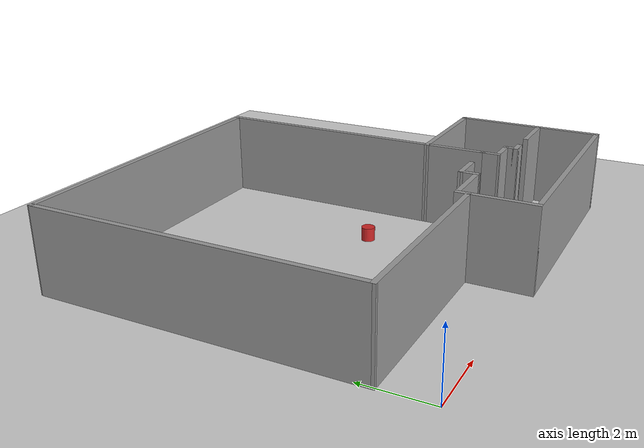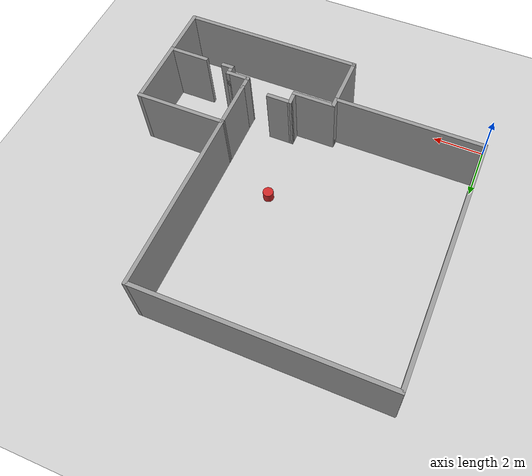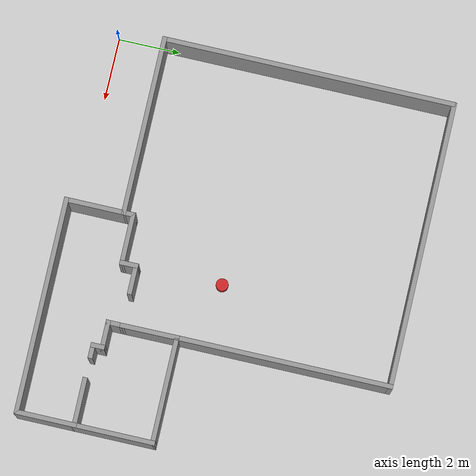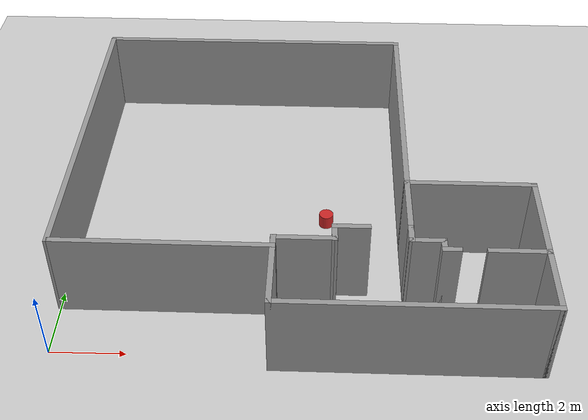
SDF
<sdf version="1.7">
 <world name="default">
  <light name="sun" type="directional">
   <pose>0 0 10 0 -0 0</pose>
   <diffuse>0.8 0.8 0.8 1</diffuse>
   <specular>0.2 0.2 0.2 1</specular>
   <attenuation>
    <range>1000</range>
    <constant>0.9</constant>
    <linear>0.01</linear>
    <quadratic>0.001</quadratic>
   </attenuation>
   <direction>-0.5 0.1 -0.9</direction>
   <spot><inner_angle>0</inner_angle><outer_angle>0</outer_angle><falloff>0</falloff></spot>
  </light>
  <model name="ground_plane">
   <static>1</static>
   <link name="link">
    <collision name="collision">
     <geometry><plane><normal>0 0 1</normal><size>100 100</size></plane></geometry>
     <surface>
      <contact><collide_bitmask>65535</collide_bitmask></contact>
      <friction><ode><mu>100</mu><mu2>50</mu2></ode></friction>
     </surface>
    </collision>
    <visual name="visual">
     <cast_shadows>0</cast_shadows>
     <geometry><plane><normal>0 0 1</normal><size>100 100</size></plane></geometry>
     <material>
      <script><uri>file://media/materials/scripts/gazebo.material</uri><name>Gazebo/Grey</name></script>
     </material>
    </visual>
   </link>
  </model>
  <gravity>0 0 -9.8</gravity>
  <magnetic_field>6e-06 2.3e-05 -4.2e-05</magnetic_field>
  <atmosphere type="adiabatic"/>
  <physics type="ode">
   <max_step_size>0.001</max_step_size>
   <real_time_factor>1</real_time_factor>
   <real_time_update_rate>1000</real_time_update_rate>
  </physics>
  <scene><ambient>0.4 0.4 0.4 1</ambient><background>0.7 0.7 0.7 1</background><shadows>1</shadows></scene>
  <spherical_coordinates>
   <surface_model>EARTH_WGS84</surface_model>
   <latitude_deg>0</latitude_deg>
   <longitude_deg>0</longitude_deg>
   <elevation>0</elevation>
   <heading_deg>0</heading_deg>
  </spherical_coordinates>
  <model name="myworld">
   <pose>6.25639 5.28948 0 0 -0 0</pose>
   <link name="Wall_10">
    <collision name="Wall_10_Collision">
     <geometry><box><size>9.46 0.15 2.5</size></box></geometry>
     <pose>0 0 1.25 0 -0 0</pose>
    </collision>
    <visual name="Wall_10_Visual">
     <pose>0 0 1.25 0 -0 0</pose>
     <geometry><box><size>9.46 0.15 2.5</size></box></geometry>
     <material>
      <script><uri>file://media/materials/scripts/gazebo.material</uri><name>Gazebo/Grey</name></script>
      <ambient>1 1 1 1</ambient>
     </material>
     <meta><layer>0</layer></meta>
    </visual>
    <pose>-6.24496 0.906376 0 0 -0 1.5708</pose>
   </link>
   <link name="Wall_109">
    <collision name="Wall_109_Collision">
     <geometry><box><size>3.52779 0.15 2.5</size></box></geometry>
     <pose>0 0 1.25 0 -0 0</pose>
    </collision>
    <visual name="Wall_109_Visual">
     <pose>0 0 1.25 0 -0 0</pose>
     <geometry><box><size>3.52779 0.15 2.5</size></box></geometry>
     <material>
      <script><uri>file://media/materials/scripts/gazebo.material</uri><name>Gazebo/Grey</name></script>
      <ambient>1 1 1 1</ambient>
     </material>
     <meta><layer>0</layer></meta>
    </visual>
    <pose>4.55614 -1.245 0 0 -0 3.14159</pose>
   </link>
   <link name="Wall_111">
    <collision name="Wall_111_Collision">
     <geometry><box><size>1.90524 0.15 2.5</size></box></geometry>
     <pose>0 0 1.25 0 -0 0</pose>
    </collision>
    <visual name="Wall_111_Visual">
     <pose>0 0 1.25 0 -0 0</pose>
     <geometry><box><size>1.90524 0.15 2.5</size></box></geometry>
     <material>
      <script><uri>file://media/materials/scripts/gazebo.material</uri><name>Gazebo/Grey</name></script>
      <ambient>1 1 1 1</ambient>
     </material>
     <meta><layer>0</layer></meta>
    </visual>
    <pose>2.87215 -2.12261 0 0 -0 -1.56522</pose>
   </link>
   <link name="Wall_114">
    <collision name="Wall_114_Collision">
     <geometry><box><size>7 0.15 2.5</size></box></geometry>
     <pose>0 0 1.25 0 -0 0</pose>
    </collision>
    <visual name="Wall_114_Visual">
     <pose>0 0 1.25 0 -0 0</pose>
     <geometry><box><size>7 0.15 2.5</size></box></geometry>
     <material>
      <script><uri>file://media/materials/scripts/gazebo.material</uri><name>Gazebo/Grey</name></script>
      <ambient>1 1 1 1</ambient>
     </material>
     <meta><layer>0</layer></meta>
    </visual>
    <pose>2.86725 2.18 0 0 -0 1.5708</pose>
   </link>
   <link name="Wall_116">
    <collision name="Wall_116_Collision">
     <geometry><box><size>9.25 0.15 2.5</size></box></geometry>
     <pose>0 0 1.25 0 -0 0</pose>
    </collision>
    <visual name="Wall_116_Visual">
     <pose>0 0 1.25 0 -0 0</pose>
     <geometry><box><size>9.25 0.15 2.5</size></box></geometry>
     <material>
      <script><uri>file://media/materials/scripts/gazebo.material</uri><name>Gazebo/Grey</name></script>
      <ambient>1 1 1 1</ambient>
     </material>
     <meta><layer>0</layer></meta>
    </visual>
    <pose>-1.68275 5.605 0 0 -0 3.14159</pose>
   </link>
   <link name="Wall_119">
    <collision name="Wall_119_Collision">
     <geometry><box><size>2 0.15 2.5</size></box></geometry>
     <pose>0 0 1.25 0 -0 0</pose>
    </collision>
    <visual name="Wall_119_Visual">
     <pose>0 0 1.25 0 -0 0</pose>
     <geometry><box><size>2 0.15 2.5</size></box></geometry>
     <material>
      <script><uri>file://media/materials/scripts/gazebo.material</uri><name>Gazebo/Grey</name></script>
      <ambient>1 1 1 1</ambient>
     </material>
     <meta><layer>0</layer></meta>
    </visual>
    <pose>-0.594959 -4.68 0 0 -0 -1.5708</pose>
   </link>
   <link name="Wall_127">
    <collision name="Wall_127_Collision">
     <geometry><box><size>1 0.15 2.5</size></box></geometry>
     <pose>0 0 1.25 0 -0 0</pose>
    </collision>
    <visual name="Wall_127_Visual">
     <pose>0 0 1.25 0 -0 0</pose>
     <geometry><box><size>1 0.15 2.5</size></box></geometry>
     <material>
      <script><uri>file://media/materials/scripts/gazebo.material</uri><name>Gazebo/Grey</name></script>
      <ambient>1 1 1 1</ambient>
     </material>
     <meta><layer>0</layer></meta>
    </visual>
    <pose>1.37526 -3.005 0 0 -0 0</pose>
   </link>
   <link name="Wall_133">
    <collision name="Wall_133_Collision">
     <geometry><box><size>0.95 0.15 2.5</size></box></geometry>
     <pose>0 0 1.25 0 -0 0</pose>
    </collision>
    <visual name="Wall_133_Visual">
     <pose>0 0 1.25 0 -0 0</pose>
     <geometry><box><size>0.95 0.15 2.5</size></box></geometry>
     <material>
      <script><uri>file://media/materials/scripts/gazebo.material</uri><name>Gazebo/Grey</name></script>
      <ambient>1 1 1 1</ambient>
     </material>
     <meta><layer>0</layer></meta>
    </visual>
    <pose>3.27723 -3.45021 0 0 -0 0</pose>
   </link>
   <link name="Wall_135">
    <collision name="Wall_135_Collision">
     <geometry><box><size>0.45 0.15 2.5</size></box></geometry>
     <pose>0 0 1.25 0 -0 0</pose>
    </collision>
    <visual name="Wall_135_Visual">
     <pose>0 0 1.25 0 -0 0</pose>
     <geometry><box><size>0.45 0.15 2.5</size></box></geometry>
     <material>
      <script><uri>file://media/materials/scripts/gazebo.material</uri><name>Gazebo/Grey</name></script>
      <ambient>1 1 1 1</ambient>
     </material>
     <meta><layer>0</layer></meta>
    </visual>
    <pose>3.67723 -3.60021 0 0 -0 -1.5708</pose>
   </link>
   <link name="Wall_138">
    <collision name="Wall_138_Collision">
     <geometry><box><size>0.5 0.15 2.5</size></box></geometry>
     <pose>0 0 1.25 0 -0 0</pose>
    </collision>
    <visual name="Wall_138_Visual">
     <pose>0 0 1.25 0 -0 0</pose>
     <geometry><box><size>0.5 0.15 2.5</size></box></geometry>
     <material>
      <script><uri>file://media/materials/scripts/gazebo.material</uri><name>Gazebo/Grey</name></script>
      <ambient>1 1 1 1</ambient>
     </material>
     <meta><layer>0</layer></meta>
    </visual>
    <pose>3.85223 -3.75021 0 0 -0 0</pose>
   </link>
   <link name="Wall_14">
    <collision name="Wall_14_Collision">
     <geometry><box><size>5.8 0.15 2.5</size></box></geometry>
     <pose>0 0 1.25 0 -0 0</pose>
    </collision>
    <visual name="Wall_14_Visual">
     <pose>0 0 1.25 0 -0 0</pose>
     <geometry><box><size>5.8 0.15 2.5</size></box></geometry>
     <material>
      <script><uri>file://media/materials/scripts/gazebo.material</uri><name>Gazebo/Grey</name></script>
      <ambient>1 1 1 1</ambient>
     </material>
     <meta><layer>0</layer></meta>
    </visual>
    <pose>-3.41996 -3.75181 0 0 -0 -0.001128</pose>
   </link>
   <link name="Wall_144">
    <collision name="Wall_144_Collision">
     <geometry><box><size>6.99 0.15 2.5</size></box></geometry>
     <pose>0 0 1.25 0 -0 0</pose>
    </collision>
    <visual name="Wall_144_Visual">
     <pose>0 0 1.25 0 -0 0</pose>
     <geometry><box><size>6.99 0.15 2.5</size></box></geometry>
     <material>
      <script><uri>file://media/materials/scripts/gazebo.material</uri><name>Gazebo/Grey</name></script>
      <ambient>1 1 1 1</ambient>
     </material>
     <meta><layer>0</layer></meta>
    </visual>
    <pose>2.82504 -5.605 0 0 -0 0</pose>
   </link>
   <link name="Wall_146">
    <collision name="Wall_146_Collision">
     <geometry><box><size>2 0.15 2.5</size></box></geometry>
     <pose>0 0 1.25 0 -0 0</pose>
    </collision>
    <visual name="Wall_146_Visual">
     <pose>0 0 1.25 0 -0 0</pose>
     <geometry><box><size>2 0.15 2.5</size></box></geometry>
     <material>
      <script><uri>file://media/materials/scripts/gazebo.material</uri><name>Gazebo/Grey</name></script>
      <ambient>1 1 1 1</ambient>
     </material>
     <meta><layer>0</layer></meta>
    </visual>
    <pose>6.24504 -4.68 0 0 -0 1.5708</pose>
   </link>
   <link name="Wall_148">
    <collision name="Wall_148_Collision">
     <geometry><box><size>2.66 0.15 2.5</size></box></geometry>
     <pose>0 0 1.25 0 -0 0</pose>
    </collision>
    <visual name="Wall_148_Visual">
     <pose>0 0 1.25 0 -0 0</pose>
     <geometry><box><size>2.66 0.15 2.5</size></box></geometry>
     <material>
      <script><uri>file://media/materials/scripts/gazebo.material</uri><name>Gazebo/Grey</name></script>
      <ambient>1 1 1 1</ambient>
     </material>
     <meta><layer>0</layer></meta>
    </visual>
    <pose>6.24504 -2.5 0 0 -0 1.5708</pose>
   </link>
   <link name="Wall_150">
    <collision name="Wall_150_Collision">
     <geometry><box><size>1.6 0.15 2.5</size></box></geometry>
     <pose>0 0 1.25 0 -0 0</pose>
    </collision>
    <visual name="Wall_150_Visual">
     <pose>0 0 1.25 0 -0 0</pose>
     <geometry><box><size>1.6 0.15 2.5</size></box></geometry>
     <material>
      <script><uri>file://media/materials/scripts/gazebo.material</uri><name>Gazebo/Grey</name></script>
      <ambient>1 1 1 1</ambient>
     </material>
     <meta><layer>0</layer></meta>
    </visual>
    <pose>5.52004 -3.755 0 0 -0 3.14159</pose>
   </link>
   <link name="Wall_54">
    <collision name="Wall_54_Collision">
     <geometry><box><size>0.45 0.15 2.5</size></box></geometry>
     <pose>0 0 1.25 0 -0 0</pose>
    </collision>
    <visual name="Wall_54_Visual">
     <pose>0 0 1.25 0 -0 0</pose>
     <geometry><box><size>0.45 0.15 2.5</size></box></geometry>
     <material>
      <script><uri>file://media/materials/scripts/gazebo.material</uri><name>Gazebo/Grey</name></script>
      <ambient>1 1 1 1</ambient>
     </material>
     <meta><layer>0</layer></meta>
    </visual>
    <pose>-0.594959 -3.605 0 0 -0 1.5708</pose>
   </link>
   <link name="Wall_85">
    <collision name="Wall_85_Collision">
     <geometry><box><size>1.7 0.15 2.5</size></box></geometry>
     <pose>0 0 1.25 0 -0 0</pose>
    </collision>
    <visual name="Wall_85_Visual">
     <pose>0 0 1.25 0 -0 0</pose>
     <geometry><box><size>1.7 0.15 2.5</size></box></geometry>
     <material>
      <script><uri>file://media/materials/scripts/gazebo.material</uri><name>Gazebo/Grey</name></script>
      <ambient>1 1 1 1</ambient>
     </material>
     <meta><layer>0</layer></meta>
    </visual>
    <pose>0.180041 -3.455 0 0 -0 0</pose>
   </link>
   <link name="Wall_91">
    <collision name="Wall_91_Collision">
     <geometry><box><size>0.6 0.15 2.5</size></box></geometry>
     <pose>0 0 1.25 0 -0 0</pose>
    </collision>
    <visual name="Wall_91_Visual">
     <pose>0 0 1.25 0 -0 0</pose>
     <geometry><box><size>0.6 0.15 2.5</size></box></geometry>
     <material>
      <script><uri>file://media/materials/scripts/gazebo.material</uri><name>Gazebo/Grey</name></script>
      <ambient>1 1 1 1</ambient>
     </material>
     <meta><layer>0</layer></meta>
    </visual>
    <pose>0.952652 -3.23 0 0 -0 1.58142</pose>
   </link>
   <link name="Wall_97">
    <collision name="Wall_97_Collision">
     <geometry><box><size>0.6 0.15 2.5</size></box></geometry>
     <pose>0 0 1.25 0 -0 0</pose>
    </collision>
    <visual name="Wall_97_Visual">
     <pose>0 0 1.25 0 -0 0</pose>
     <geometry><box><size>0.6 0.15 2.5</size></box></geometry>
     <material>
      <script><uri>file://media/materials/scripts/gazebo.material</uri><name>Gazebo/Grey</name></script>
      <ambient>1 1 1 1</ambient>
     </material>
     <meta><layer>0</layer></meta>
    </visual>
    <pose>2.87713 -3.22521 0 0 -0 -1.57038</pose>
   </link>
   <static>1</static>
  </model>
  <model name="cylinder_model">
   <static>true</static>
   <link name="cylinder_link">
    <visual name="cylinder_visual">
     <geometry><cylinder><radius>0.2</radius><length>0.4</length></cylinder></geometry>
     <material>
      <script><name>Gazebo/Red</name><uri>file://media/materials/scripts/gazebo.material</uri></script>
     </material>
    </visual>
    <collision name="cylinder_collision">
     <geometry><cylinder><radius>0.2</radius><length>0.4</length></cylinder></geometry>
    </collision>
   </link>
   <pose>7.0 5.0 0.2 0 -0 0</pose>
  </model>
 </world>
</sdf>
